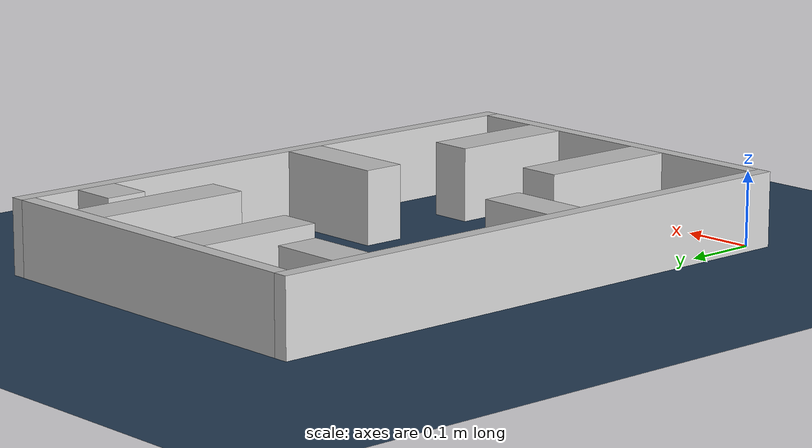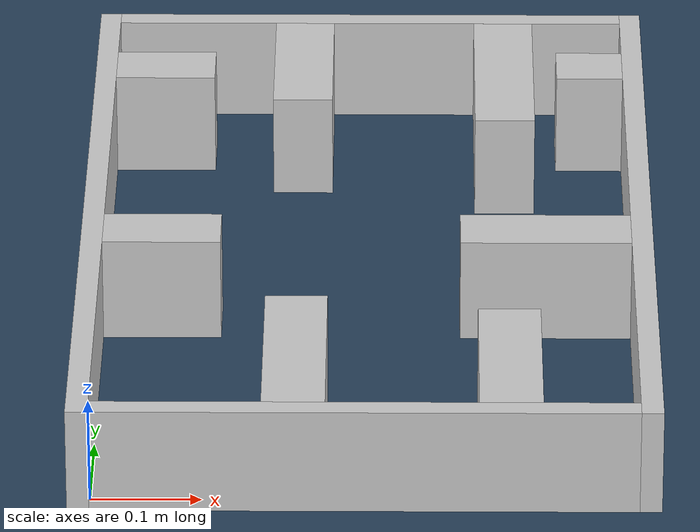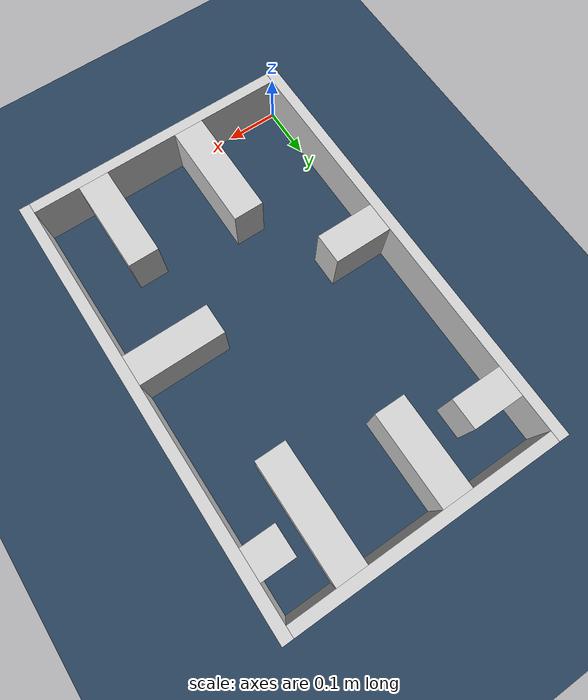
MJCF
<?xml version="1.0" ?>
<mujoco model="generated_real_template">
  <compiler angle="degree"/>
  <option timestep="0.002" integrator="implicitfast" iterations="100" cone="elliptic"/>
  <default>
    <geom density="1"/>
  </default>
  <asset>
    <texture builtin="gradient" height="3072" rgb1="0.3 0.5 0.7" rgb2="0 0 0" type="skybox" width="512"/>
    <texture builtin="checker" height="300" mark="edge" markrgb="0.8 0.8 0.8" name="groundplane" rgb1="0.2 0.3 0.4" rgb2="0.1 0.2 0.3" type="2d" width="300"/>
    <material name="groundplane" reflectance="0.2" texrepeat="5 5" texture="groundplane" texuniform="true"/>
  </asset>
  <worldbody>
    <light dir="0 0 -1" directional="true" pos="0 0 1.5"/>
    <geom name="floor" type="plane" condim="4" friction="0.5 0.005 0.001" material="groundplane" size="0 0 0.05"/>
    <body name="walls">
      <geom name="wall_boundary_left" type="box" condim="4" friction="1.0 0.005 0.0001" rgba="0.8 0.8 0.8 1" pos="-0.010000 0.387500 0.050000" euler="0 0 0.000000" size="0.010000 0.407500 0.050000"/>
      <geom name="wall_boundary_right" type="box" condim="4" friction="1.0 0.005 0.0001" rgba="0.8 0.8 0.8 1" pos="0.500000 0.387500 0.050000" euler="0 0 0.000000" size="0.010000 0.407500 0.050000"/>
      <geom name="wall_boundary_bottom" type="box" condim="4" friction="1.0 0.005 0.0001" rgba="0.8 0.8 0.8 1" pos="0.245000 -0.010000 0.050000" euler="0 0 0.000000" size="0.245000 0.010000 0.050000"/>
      <geom name="wall_boundary_top" type="box" condim="4" friction="1.0 0.005 0.0001" rgba="0.8 0.8 0.8 1" pos="0.245000 0.785000 0.050000" euler="0 0 0.000000" size="0.245000 0.010000 0.050000"/>
      <geom name="wall_inner_1_1" type="box" condim="4" friction="1.0 0.005 0.0001" rgba="0.8 0.8 0.8 1" pos="0.047756 0.680678 0.050000" euler="0 0 0.000000" size="0.047756 0.028500 0.050000"/>
      <geom name="wall_inner_1_2" type="box" condim="4" friction="1.0 0.005 0.0001" rgba="0.8 0.8 0.8 1" pos="0.458126 0.680678 0.050000" euler="0 0 0.000000" size="0.031874 0.028500 0.050000"/>
      <geom name="wall_inner_2_1" type="box" condim="4" friction="1.0 0.005 0.0001" rgba="0.8 0.8 0.8 1" pos="0.375326 0.088285 0.050000" euler="0 0 90.000000" size="0.088285 0.028500 0.050000"/>
      <geom name="wall_inner_2_2" type="box" condim="4" friction="1.0 0.005 0.0001" rgba="0.8 0.8 0.8 1" pos="0.375326 0.667864 0.050000" euler="0 0 90.000000" size="0.107136 0.028500 0.050000"/>
      <geom name="wall_inner_3_1" type="box" condim="4" friction="1.0 0.005 0.0001" rgba="0.8 0.8 0.8 1" pos="0.054763 0.335053 0.050000" euler="0 0 0.000000" size="0.054763 0.028500 0.050000"/>
      <geom name="wall_inner_3_2" type="box" condim="4" friction="1.0 0.005 0.0001" rgba="0.8 0.8 0.8 1" pos="0.410771 0.335053 0.050000" euler="0 0 0.000000" size="0.079229 0.028500 0.050000"/>
      <geom name="wall_inner_4_1" type="box" condim="4" friction="1.0 0.005 0.0001" rgba="0.8 0.8 0.8 1" pos="0.181424 0.100648 0.050000" euler="0 0 90.000000" size="0.100648 0.028500 0.050000"/>
      <geom name="wall_inner_4_2" type="box" condim="4" friction="1.0 0.005 0.0001" rgba="0.8 0.8 0.8 1" pos="0.181424 0.689711 0.050000" euler="0 0 90.000000" size="0.085289 0.028500 0.050000"/>
    </body>
  </worldbody>
</mujoco>
